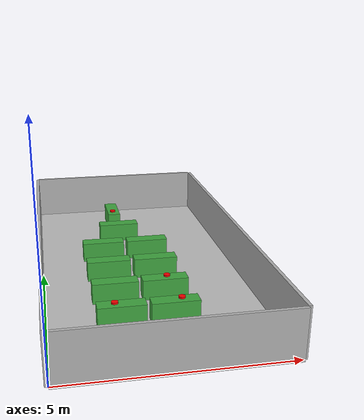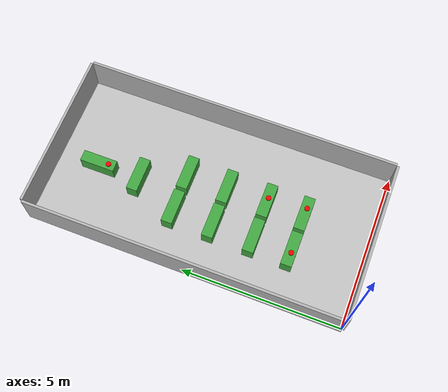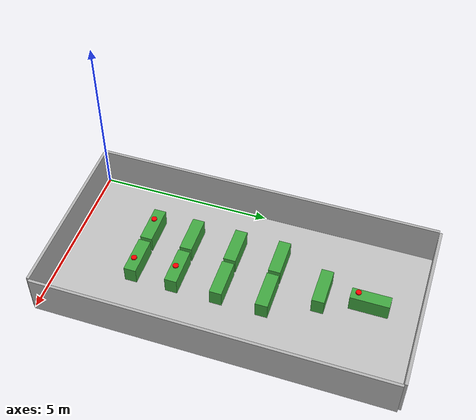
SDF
<?xml version="1.0" ?>
<sdf version="1.6">
  <world name="greenhouse_world">

    <include>
      <uri>model://sun</uri>
    </include>

    <model name="greenhouse_floor">
      <static>true</static>
      <pose>2.500 5.000 -0.010 0 0 0</pose>
      <link name="link">

        <collision name="collision">
          <geometry>
            <box>
              <size>5.000 10.000 0.020</size>
            </box>
          </geometry>
        </collision>

        <visual name="visual">
          <geometry>
            <box>
              <size>5.000 10.000 0.020</size>
            </box>
          </geometry>
          <material>
            <ambient>0.75 0.75 0.75 1</ambient>
            <diffuse>0.75 0.75 0.75 1</diffuse>
          </material>
        </visual>

      </link>
    </model>

    <model name="wall_left">
      <static>true</static>
      <pose>-0.040 5.000 0.600 0 0 0</pose>
      <link name="link">

        <collision name="collision">
          <geometry>
            <box>
              <size>0.080 10.000 1.200</size>
            </box>
          </geometry>
        </collision>

        <visual name="visual">
          <geometry>
            <box>
              <size>0.080 10.000 1.200</size>
            </box>
          </geometry>
          <material>
            <ambient>0.7 0.7 0.7 1</ambient>
            <diffuse>0.7 0.7 0.7 1</diffuse>
          </material>
        </visual>

      </link>
    </model>

    <model name="wall_right">
      <static>true</static>
      <pose>5.040 5.000 0.600 0 0 0</pose>
      <link name="link">

        <collision name="collision">
          <geometry>
            <box>
              <size>0.080 10.000 1.200</size>
            </box>
          </geometry>
        </collision>

        <visual name="visual">
          <geometry>
            <box>
              <size>0.080 10.000 1.200</size>
            </box>
          </geometry>
          <material>
            <ambient>0.7 0.7 0.7 1</ambient>
            <diffuse>0.7 0.7 0.7 1</diffuse>
          </material>
        </visual>

      </link>
    </model>

    <model name="wall_bottom">
      <static>true</static>
      <pose>2.500 -0.040 0.600 0 0 0</pose>
      <link name="link">

        <collision name="collision">
          <geometry>
            <box>
              <size>5.000 0.080 1.200</size>
            </box>
          </geometry>
        </collision>

        <visual name="visual">
          <geometry>
            <box>
              <size>5.000 0.080 1.200</size>
            </box>
          </geometry>
          <material>
            <ambient>0.7 0.7 0.7 1</ambient>
            <diffuse>0.7 0.7 0.7 1</diffuse>
          </material>
        </visual>

      </link>
    </model>

    <model name="wall_top">
      <static>true</static>
      <pose>2.500 10.040 0.600 0 0 0</pose>
      <link name="link">

        <collision name="collision">
          <geometry>
            <box>
              <size>5.000 0.080 1.200</size>
            </box>
          </geometry>
        </collision>

        <visual name="visual">
          <geometry>
            <box>
              <size>5.000 0.080 1.200</size>
            </box>
          </geometry>
          <material>
            <ambient>0.7 0.7 0.7 1</ambient>
            <diffuse>0.7 0.7 0.7 1</diffuse>
          </material>
        </visual>

      </link>
    </model>

    <model name="table_1">
      <static>true</static>
      <pose>1.650 2.125 0.250 0 0 0</pose>
      <link name="link">

        <collision name="collision">
          <geometry>
            <box>
              <size>1.100 0.350 0.500</size>
            </box>
          </geometry>
        </collision>

        <visual name="visual">
          <geometry>
            <box>
              <size>1.100 0.350 0.500</size>
            </box>
          </geometry>
          <material>
            <ambient>0.25 0.65 0.25 1</ambient>
            <diffuse>0.25 0.65 0.25 1</diffuse>
          </material>
        </visual>

      </link>
    </model>

    <model name="table_2">
      <static>true</static>
      <pose>1.650 3.325 0.250 0 0 0</pose>
      <link name="link">

        <collision name="collision">
          <geometry>
            <box>
              <size>1.100 0.350 0.500</size>
            </box>
          </geometry>
        </collision>

        <visual name="visual">
          <geometry>
            <box>
              <size>1.100 0.350 0.500</size>
            </box>
          </geometry>
          <material>
            <ambient>0.25 0.65 0.25 1</ambient>
            <diffuse>0.25 0.65 0.25 1</diffuse>
          </material>
        </visual>

      </link>
    </model>

    <model name="table_3">
      <static>true</static>
      <pose>1.650 4.625 0.250 0 0 0</pose>
      <link name="link">

        <collision name="collision">
          <geometry>
            <box>
              <size>1.100 0.350 0.500</size>
            </box>
          </geometry>
        </collision>

        <visual name="visual">
          <geometry>
            <box>
              <size>1.100 0.350 0.500</size>
            </box>
          </geometry>
          <material>
            <ambient>0.25 0.65 0.25 1</ambient>
            <diffuse>0.25 0.65 0.25 1</diffuse>
          </material>
        </visual>

      </link>
    </model>

    <model name="table_4">
      <static>true</static>
      <pose>1.650 5.925 0.250 0 0 0</pose>
      <link name="link">

        <collision name="collision">
          <geometry>
            <box>
              <size>1.100 0.350 0.500</size>
            </box>
          </geometry>
        </collision>

        <visual name="visual">
          <geometry>
            <box>
              <size>1.100 0.350 0.500</size>
            </box>
          </geometry>
          <material>
            <ambient>0.25 0.65 0.25 1</ambient>
            <diffuse>0.25 0.65 0.25 1</diffuse>
          </material>
        </visual>

      </link>
    </model>

    <model name="table_5">
      <static>true</static>
      <pose>2.850 2.125 0.250 0 0 0</pose>
      <link name="link">

        <collision name="collision">
          <geometry>
            <box>
              <size>1.100 0.350 0.500</size>
            </box>
          </geometry>
        </collision>

        <visual name="visual">
          <geometry>
            <box>
              <size>1.100 0.350 0.500</size>
            </box>
          </geometry>
          <material>
            <ambient>0.25 0.65 0.25 1</ambient>
            <diffuse>0.25 0.65 0.25 1</diffuse>
          </material>
        </visual>

      </link>
    </model>

    <model name="table_6">
      <static>true</static>
      <pose>2.850 3.325 0.250 0 0 0</pose>
      <link name="link">

        <collision name="collision">
          <geometry>
            <box>
              <size>1.100 0.350 0.500</size>
            </box>
          </geometry>
        </collision>

        <visual name="visual">
          <geometry>
            <box>
              <size>1.100 0.350 0.500</size>
            </box>
          </geometry>
          <material>
            <ambient>0.25 0.65 0.25 1</ambient>
            <diffuse>0.25 0.65 0.25 1</diffuse>
          </material>
        </visual>

      </link>
    </model>

    <model name="table_7">
      <static>true</static>
      <pose>2.850 4.625 0.250 0 0 0</pose>
      <link name="link">

        <collision name="collision">
          <geometry>
            <box>
              <size>1.100 0.350 0.500</size>
            </box>
          </geometry>
        </collision>

        <visual name="visual">
          <geometry>
            <box>
              <size>1.100 0.350 0.500</size>
            </box>
          </geometry>
          <material>
            <ambient>0.25 0.65 0.25 1</ambient>
            <diffuse>0.25 0.65 0.25 1</diffuse>
          </material>
        </visual>

      </link>
    </model>

    <model name="table_8">
      <static>true</static>
      <pose>2.850 5.925 0.250 0 0 0</pose>
      <link name="link">

        <collision name="collision">
          <geometry>
            <box>
              <size>1.100 0.350 0.500</size>
            </box>
          </geometry>
        </collision>

        <visual name="visual">
          <geometry>
            <box>
              <size>1.100 0.350 0.500</size>
            </box>
          </geometry>
          <material>
            <ambient>0.25 0.65 0.25 1</ambient>
            <diffuse>0.25 0.65 0.25 1</diffuse>
          </material>
        </visual>

      </link>
    </model>

    <model name="table_9">
      <static>true</static>
      <pose>2.250 7.325 0.250 0 0 0</pose>
      <link name="link">

        <collision name="collision">
          <geometry>
            <box>
              <size>1.100 0.350 0.500</size>
            </box>
          </geometry>
        </collision>

        <visual name="visual">
          <geometry>
            <box>
              <size>1.100 0.350 0.500</size>
            </box>
          </geometry>
          <material>
            <ambient>0.25 0.65 0.25 1</ambient>
            <diffuse>0.25 0.65 0.25 1</diffuse>
          </material>
        </visual>

      </link>
    </model>

    <model name="table_10">
      <static>true</static>
      <pose>2.225 8.650 0.250 0 0 0</pose>
      <link name="link">

        <collision name="collision">
          <geometry>
            <box>
              <size>0.350 1.100 0.500</size>
            </box>
          </geometry>
        </collision>

        <visual name="visual">
          <geometry>
            <box>
              <size>0.350 1.100 0.500</size>
            </box>
          </geometry>
          <material>
            <ambient>0.25 0.65 0.25 1</ambient>
            <diffuse>0.25 0.65 0.25 1</diffuse>
          </material>
        </visual>

      </link>
    </model>

    <model name="tag_1">
      <static>true</static>
      <pose>1.500 2.100 0.550 0 0 0</pose>
      <link name="link">

        <visual name="visual">
          <geometry>
            <cylinder>
              <radius>0.080</radius>
              <length>0.040</length>
            </cylinder>
          </geometry>
          <material>
            <ambient>1 0 0 1</ambient>
            <diffuse>1 0 0 1</diffuse>
          </material>
        </visual>

      </link>
    </model>

    <model name="tag_2">
      <static>true</static>
      <pose>2.900 3.300 0.550 0 0 0</pose>
      <link name="link">

        <visual name="visual">
          <geometry>
            <cylinder>
              <radius>0.080</radius>
              <length>0.040</length>
            </cylinder>
          </geometry>
          <material>
            <ambient>1 0 0 1</ambient>
            <diffuse>1 0 0 1</diffuse>
          </material>
        </visual>

      </link>
    </model>

    <model name="tag_3">
      <static>true</static>
      <pose>2.200 8.300 0.550 0 0 0</pose>
      <link name="link">

        <visual name="visual">
          <geometry>
            <cylinder>
              <radius>0.080</radius>
              <length>0.040</length>
            </cylinder>
          </geometry>
          <material>
            <ambient>1 0 0 1</ambient>
            <diffuse>1 0 0 1</diffuse>
          </material>
        </visual>

      </link>
    </model>

    <model name="tag_4">
      <static>true</static>
      <pose>3.000 2.100 0.550 0 0 0</pose>
      <link name="link">

        <visual name="visual">
          <geometry>
            <cylinder>
              <radius>0.080</radius>
              <length>0.040</length>
            </cylinder>
          </geometry>
          <material>
            <ambient>1 0 0 1</ambient>
            <diffuse>1 0 0 1</diffuse>
          </material>
        </visual>

      </link>
    </model>

  </world>
</sdf>
